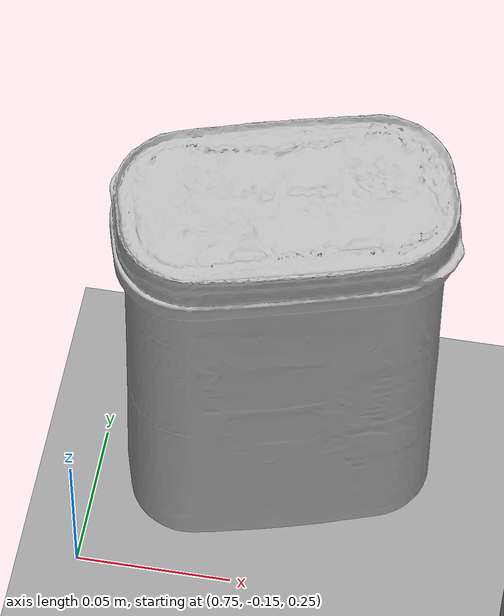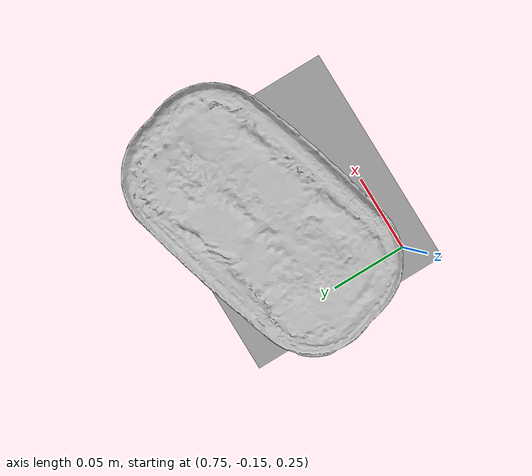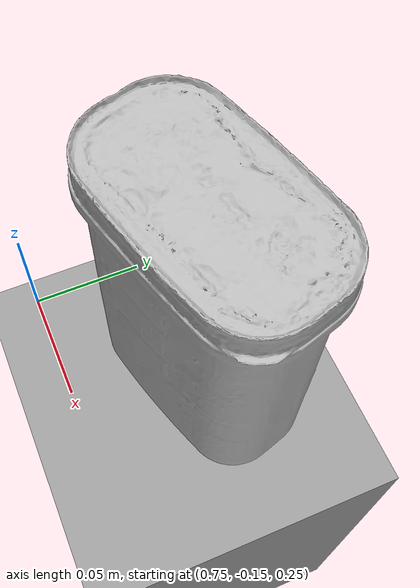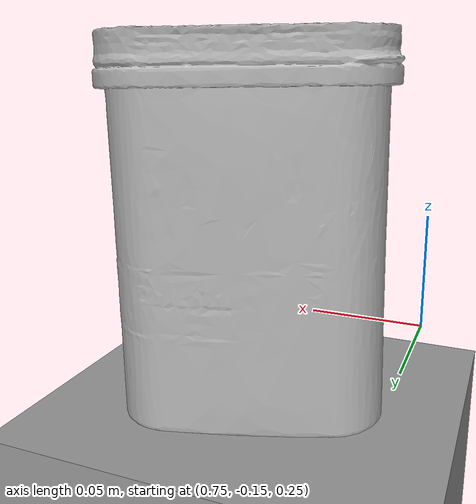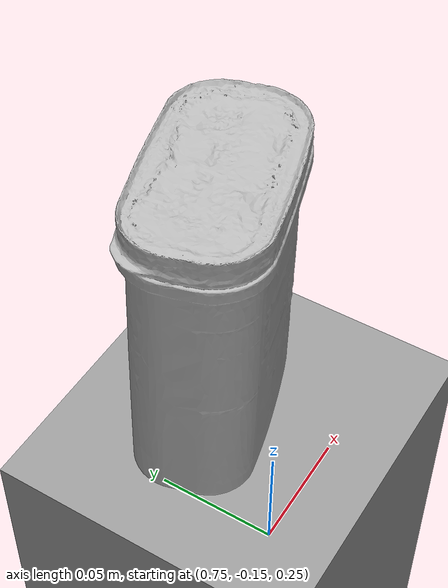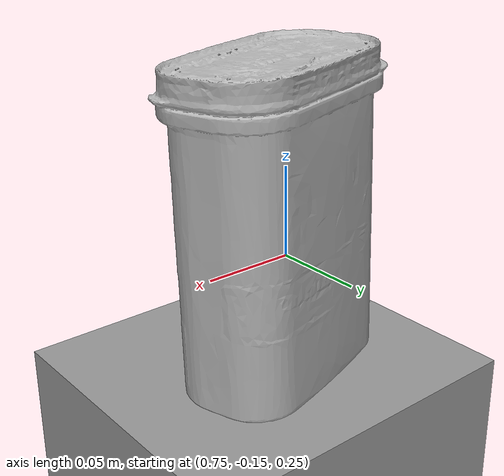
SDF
<sdf version="1.7">
 <world name="default">
  <light name="sun" type="directional">
   <pose>0 0 10 0 -0 0</pose>
   <diffuse>0.8 0.8 0.8 1</diffuse>
   <specular>0.2 0.2 0.2 1</specular>
   <attenuation>
    <range>1000</range>
    <constant>0.9</constant>
    <linear>0.01</linear>
    <quadratic>0.001</quadratic>
   </attenuation>
   <direction>-0.5 0.1 -0.9</direction>
   <spot><inner_angle>0</inner_angle><outer_angle>0</outer_angle><falloff>0</falloff></spot>
  </light>
  <model name="ground_plane">
   <static>1</static>
   <link name="link">
    <collision name="collision">
     <geometry><plane><normal>0 0 1</normal><size>100 100</size></plane></geometry>
     <surface>
      <contact><collide_bitmask>65535</collide_bitmask></contact>
      <friction><ode><mu>100</mu><mu2>50</mu2></ode></friction>
     </surface>
    </collision>
    <visual name="visual">
     <cast_shadows>0</cast_shadows>
     <geometry><plane><normal>0 0 1</normal><size>100 100</size></plane></geometry>
     <material>
      <script><uri>file://media/materials/scripts/gazebo.material</uri><name>Gazebo/Grey</name></script>
     </material>
    </visual>
   </link>
  </model>
  <gravity>0 0 -9.8</gravity>
  <magnetic_field>6e-06 2.3e-05 -4.2e-05</magnetic_field>
  <atmosphere type="adiabatic"/>
  <physics type="ode">
   <max_step_size>0.001</max_step_size>
   <real_time_factor>1</real_time_factor>
   <real_time_update_rate>1000</real_time_update_rate>
  </physics>
  <scene><ambient>0.4 0.4 0.4 1</ambient><background>0.7 0.7 0.7 1</background><shadows>1</shadows></scene>
  <spherical_coordinates>
   <surface_model>EARTH_WGS84</surface_model>
   <latitude_deg>0</latitude_deg>
   <longitude_deg>0</longitude_deg>
   <elevation>0</elevation>
   <heading_deg>0</heading_deg>
  </spherical_coordinates>
  <model name="unit_box">
   <link name="link">
    <inertial>
     <mass>1</mass>
     <inertia>
      <ixx>0.166667</ixx>
      <ixy>0</ixy>
      <ixz>0</ixz>
      <iyy>0.166667</iyy>
      <iyz>0</iyz>
      <izz>0.166667</izz>
     </inertia>
    </inertial>
    <pose>-0.00651 -0.06471 0 0 -0 0</pose>
    <visual name="visual">
     <geometry><box><size>1 1.13531 0.231845</size></box></geometry>
     <material>
      <script><name>Gazebo/Grey</name><uri>file://media/materials/scripts/gazebo.material</uri></script>
      <shader type="pixel"><normal_map>__default__</normal_map></shader>
      <ambient>0.3 0.3 0.3 1</ambient>
      <diffuse>0.7 0.7 0.7 1</diffuse>
      <specular>0.01 0.01 0.01 1</specular>
      <emissive>0 0 0 1</emissive>
     </material>
    </visual>
    <collision name="collision">
     <geometry><box><size>1 1.13531 0.231845</size></box></geometry>
     <surface>
      <friction>
       <ode><mu>1</mu><mu2>1</mu2><fdir1>0 0 0</fdir1><slip1>0</slip1><slip2>0</slip2></ode>
       <torsional>
        <coefficient>1</coefficient>
        <patch_radius>0</patch_radius>
        <surface_radius>0</surface_radius>
        <use_patch_radius>1</use_patch_radius>
        <ode><slip>0</slip></ode>
       </torsional>
      </friction>
      <bounce><restitution_coefficient>0</restitution_coefficient><threshold>1e+06</threshold></bounce>
      <contact>
       <collide_without_contact>0</collide_without_contact>
       <collide_without_contact_bitmask>1</collide_without_contact_bitmask>
       <collide_bitmask>1</collide_bitmask>
       <ode>
        <soft_cfm>0</soft_cfm>
        <soft_erp>0.2</soft_erp>
        <kp>1e+13</kp>
        <kd>1</kd>
        <max_vel>0.01</max_vel>
        <min_depth>0</min_depth>
       </ode>
       <bullet>
        <split_impulse>1</split_impulse>
        <split_impulse_penetration_threshold>-0.01</split_impulse_penetration_threshold>
        <soft_cfm>0</soft_cfm>
        <soft_erp>0.2</soft_erp>
        <kp>1e+13</kp>
        <kd>1</kd>
       </bullet>
      </contact>
     </surface>
    </collision>
   </link>
   <static>0</static>
   <pose>0.747063 -0.032658 0.115922 0 -0 7.6e-05</pose>
  </model>
  <model name="ACE_Coffee_Mug_Kristen_16_oz_cup">
   <link name="link_0">
    <visual name="visual">
     <geometry>
      <mesh>
       <uri>/home/lucfra/.ignition/fuel/fuel.ignitionrobotics.org/googleresearch/models/ace_coffee_mug_kristen_16_oz_cup/1/meshes/model.obj</uri>
      </mesh>
     </geometry>
    </visual>
    <collision name="collision_0">
     <geometry>
      <mesh>
       <uri>/home/lucfra/.ignition/fuel/fuel.ignitionrobotics.org/googleresearch/models/ace_coffee_mug_kristen_16_oz_cup/1/meshes/model.obj</uri>
      </mesh>
     </geometry>
    </collision>
    <inertial>
     <inertia><ixx>1</ixx><ixy>0</ixy><ixz>0</ixz><iyy>1</iyy><iyz>0</iyz><izz>1</izz></inertia>
     <mass>1</mass>
    </inertial>
   </link>
   <pose>0.804358 -0.089379 0.231726 -0.020117 0.01512 -1.27603</pose>
  </model>
 </world>
</sdf>
